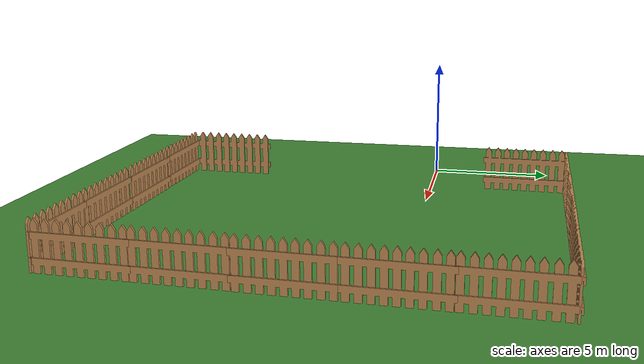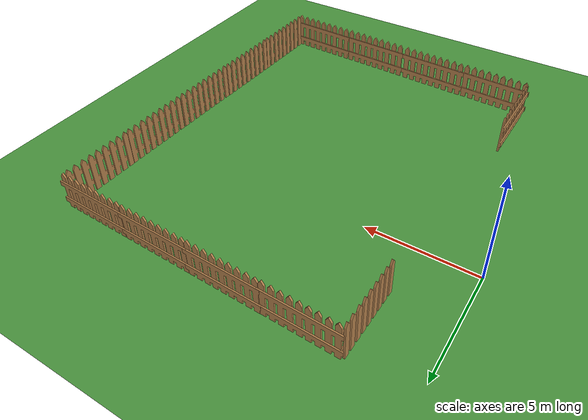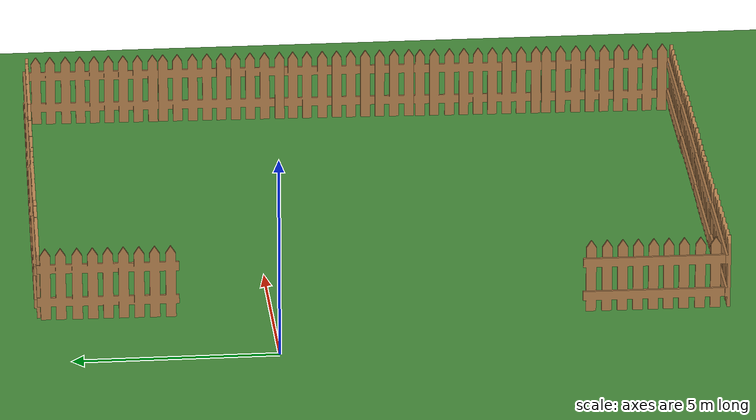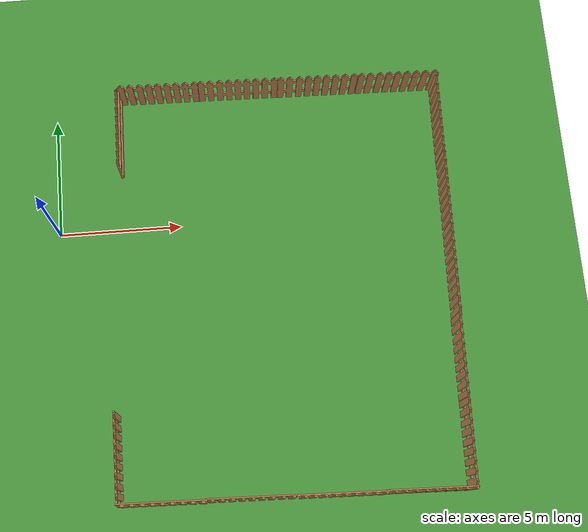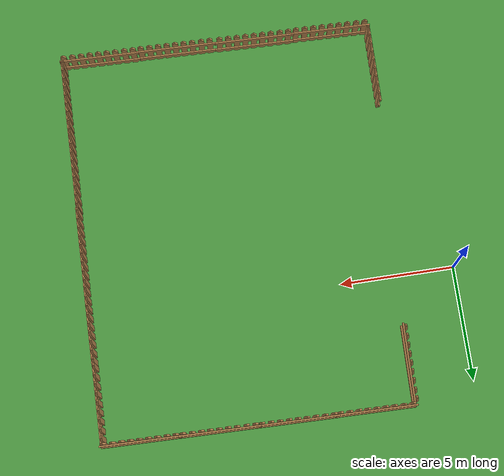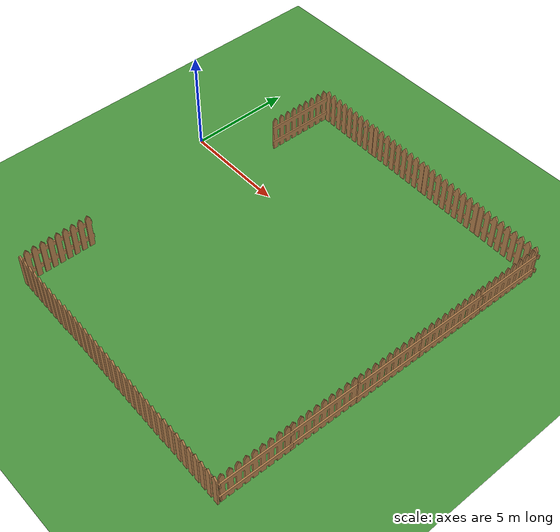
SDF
<sdf version="1.6">
 <world name="default">
  <light name="sun" type="directional">
   <pose>0 0 10 0 -0 0</pose>
   <diffuse>0.8 0.8 0.8 1</diffuse>
   <specular>0.2 0.2 0.2 1</specular>
   <attenuation>
    <range>1000</range>
    <constant>0.9</constant>
    <linear>0.01</linear>
    <quadratic>0.001</quadratic>
   </attenuation>
   <direction>-0.5 0.1 -0.9</direction>
  </light>
  <include><uri>model://ground_plane</uri></include>
  <model name="grass">
   <static>1</static>
   <link name="link">
    <collision name="collision">
     <geometry><plane><normal>0 0 1</normal><size>1 1</size></plane></geometry>
     <surface><friction><ode><mu>100</mu><mu2>50</mu2></ode></friction></surface>
    </collision>
    <visual name="visual">
     <cast_shadows>false</cast_shadows>
     <geometry><plane><normal>0 0 1</normal><size>100 100</size></plane></geometry>
     <material>
      <script><uri>model://asphalt_plane/materials/scripts</uri><name>Gazebo/Grass</name></script>
     </material>
    </visual>
   </link>
  </model>
  <physics name="default_physics" default="0" type="ode">
   <real_time_update_rate>1000</real_time_update_rate>
   <max_step_size>0.001</max_step_size>
   <real_time_factor>1</real_time_factor>
   <ode>
    <solver>
     <type>quick</type>
     <iters>150</iters>
     <precon_iters>0</precon_iters>
     <sor>1.4</sor>
     <use_dynamic_moi_rescaling>1</use_dynamic_moi_rescaling>
    </solver>
    <constraints>
     <cfm>1e-05</cfm>
     <erp>0.2</erp>
     <contact_max_correcting_vel>2000</contact_max_correcting_vel>
     <contact_surface_layer>0.01</contact_surface_layer>
    </constraints>
   </ode>
  </physics>
  <scene><ambient>0.4 0.4 0.4 1</ambient><background>0.7 0.7 0.7 1</background><shadows>1</shadows></scene>
  <gravity>0 0 -9.8</gravity>
  <magnetic_field>6e-06 2.3e-05 -4.2e-05</magnetic_field>
  <atmosphere type="adiabatic"/>
  <spherical_coordinates>
   <surface_model>EARTH_WGS84</surface_model>
   <latitude_deg>0</latitude_deg>
   <longitude_deg>0</longitude_deg>
   <elevation>0</elevation>
   <heading_deg>0</heading_deg>
  </spherical_coordinates>
  <model name="fence1">
   <link name="link">
    <inertial>
     <mass>1</mass>
     <inertia>
      <ixx>0.166667</ixx>
      <ixy>0</ixy>
      <ixz>0</ixz>
      <iyy>0.166667</iyy>
      <iyz>0</iyz>
      <izz>0.166667</izz>
     </inertia>
    </inertial>
    <visual name="visual">
     <geometry><mesh><uri>model://fence/meshes/fence.dae</uri><scale>0.3 0.3 0.3</scale></mesh></geometry>
     <material>
      <script><name>Gazebo/Wood</name><uri>file://media/materials/scripts/gazebo.material</uri></script>
      <shader type="pixel"><normal_map>__default__</normal_map></shader>
      <ambient>0.3 0.3 0.3 1</ambient>
      <diffuse>0.7 0.7 0.7 1</diffuse>
      <specular>0.01 0.01 0.01 1</specular>
      <emissive>0 0 0 1</emissive>
     </material>
     <pose>0 0 -0.5 0 -0 0</pose>
    </visual>
    <collision name="collision">
     <geometry><box><size>0.3 0.5 1</size></box></geometry>
     <surface>
      <friction>
       <ode><mu>1</mu><mu2>1</mu2><fdir1>0 0 0</fdir1><slip1>0</slip1><slip2>0</slip2></ode>
       <torsional>
        <coefficient>1</coefficient>
        <patch_radius>0</patch_radius>
        <surface_radius>0</surface_radius>
        <use_patch_radius>1</use_patch_radius>
        <ode><slip>0</slip></ode>
       </torsional>
      </friction>
      <bounce><restitution_coefficient>0</restitution_coefficient><threshold>1e+06</threshold></bounce>
      <contact>
       <collide_without_contact>0</collide_without_contact>
       <collide_without_contact_bitmask>1</collide_without_contact_bitmask>
       <collide_bitmask>1</collide_bitmask>
       <ode>
        <soft_cfm>0</soft_cfm>
        <soft_erp>0.2</soft_erp>
        <kp>1e+13</kp>
        <kd>1</kd>
        <max_vel>0.01</max_vel>
        <min_depth>0</min_depth>
       </ode>
       <bullet>
        <split_impulse>1</split_impulse>
        <split_impulse_penetration_threshold>-0.01</split_impulse_penetration_threshold>
        <soft_cfm>0</soft_cfm>
        <soft_erp>0.2</soft_erp>
        <kp>1e+13</kp>
        <kd>1</kd>
       </bullet>
      </contact>
     </surface>
    </collision>
   </link>
   <static>0</static>
   <pose>2.69665 3.98102 0.435776 0 0 -0.021223</pose>
  </model>
  <model name="fence2">
   <link name="link">
    <inertial>
     <mass>1</mass>
     <inertia>
      <ixx>0.166667</ixx>
      <ixy>0</ixy>
      <ixz>0</ixz>
      <iyy>0.166667</iyy>
      <iyz>0</iyz>
      <izz>0.166667</izz>
     </inertia>
    </inertial>
    <visual name="visual">
     <geometry><mesh><uri>model://fence/meshes/fence.dae</uri><scale>0.3 0.3 0.3</scale></mesh></geometry>
     <material>
      <script><name>Gazebo/Wood</name><uri>file://media/materials/scripts/gazebo.material</uri></script>
      <shader type="pixel"><normal_map>__default__</normal_map></shader>
      <ambient>0.3 0.3 0.3 1</ambient>
      <diffuse>0.7 0.7 0.7 1</diffuse>
      <specular>0.01 0.01 0.01 1</specular>
      <emissive>0 0 0 1</emissive>
     </material>
     <pose>0 0 -0.5 0 -0 0</pose>
    </visual>
    <collision name="collision">
     <geometry><box><size>0.3 0.5 1</size></box></geometry>
     <surface>
      <friction>
       <ode><mu>1</mu><mu2>1</mu2><fdir1>0 0 0</fdir1><slip1>0</slip1><slip2>0</slip2></ode>
       <torsional>
        <coefficient>1</coefficient>
        <patch_radius>0</patch_radius>
        <surface_radius>0</surface_radius>
        <use_patch_radius>1</use_patch_radius>
        <ode><slip>0</slip></ode>
       </torsional>
      </friction>
      <bounce><restitution_coefficient>0</restitution_coefficient><threshold>1e+06</threshold></bounce>
      <contact>
       <collide_without_contact>0</collide_without_contact>
       <collide_without_contact_bitmask>1</collide_without_contact_bitmask>
       <collide_bitmask>1</collide_bitmask>
       <ode>
        <soft_cfm>0</soft_cfm>
        <soft_erp>0.2</soft_erp>
        <kp>1e+13</kp>
        <kd>1</kd>
        <max_vel>0.01</max_vel>
        <min_depth>0</min_depth>
       </ode>
       <bullet>
        <split_impulse>1</split_impulse>
        <split_impulse_penetration_threshold>-0.01</split_impulse_penetration_threshold>
        <soft_cfm>0</soft_cfm>
        <soft_erp>0.2</soft_erp>
        <kp>1e+13</kp>
        <kd>1</kd>
       </bullet>
      </contact>
     </surface>
    </collision>
   </link>
   <static>0</static>
   <pose>4.45364 5.64125 0.435776 0 -0 1.54699</pose>
  </model>
  <model name="fence3">
   <link name="link">
    <inertial>
     <mass>1</mass>
     <inertia>
      <ixx>0.166667</ixx>
      <ixy>0</ixy>
      <ixz>0</ixz>
      <iyy>0.166667</iyy>
      <iyz>0</iyz>
      <izz>0.166667</izz>
     </inertia>
    </inertial>
    <visual name="visual">
     <geometry><mesh><uri>model://fence/meshes/fence.dae</uri><scale>0.3 0.3 0.3</scale></mesh></geometry>
     <material>
      <script><name>Gazebo/Wood</name><uri>file://media/materials/scripts/gazebo.material</uri></script>
      <shader type="pixel"><normal_map>__default__</normal_map></shader>
      <ambient>0.3 0.3 0.3 1</ambient>
      <diffuse>0.7 0.7 0.7 1</diffuse>
      <specular>0.01 0.01 0.01 1</specular>
      <emissive>0 0 0 1</emissive>
     </material>
     <pose>0 0 -0.5 0 -0 0</pose>
    </visual>
    <collision name="collision">
     <geometry><box><size>0.3 0.5 1</size></box></geometry>
     <surface>
      <friction>
       <ode><mu>1</mu><mu2>1</mu2><fdir1>0 0 0</fdir1><slip1>0</slip1><slip2>0</slip2></ode>
       <torsional>
        <coefficient>1</coefficient>
        <patch_radius>0</patch_radius>
        <surface_radius>0</surface_radius>
        <use_patch_radius>1</use_patch_radius>
        <ode><slip>0</slip></ode>
       </torsional>
      </friction>
      <bounce><restitution_coefficient>0</restitution_coefficient><threshold>1e+06</threshold></bounce>
      <contact>
       <collide_without_contact>0</collide_without_contact>
       <collide_without_contact_bitmask>1</collide_without_contact_bitmask>
       <collide_bitmask>1</collide_bitmask>
       <ode>
        <soft_cfm>0</soft_cfm>
        <soft_erp>0.2</soft_erp>
        <kp>1e+13</kp>
        <kd>1</kd>
        <max_vel>0.01</max_vel>
        <min_depth>0</min_depth>
       </ode>
       <bullet>
        <split_impulse>1</split_impulse>
        <split_impulse_penetration_threshold>-0.01</split_impulse_penetration_threshold>
        <soft_cfm>0</soft_cfm>
        <soft_erp>0.2</soft_erp>
        <kp>1e+13</kp>
        <kd>1</kd>
       </bullet>
      </contact>
     </surface>
    </collision>
   </link>
   <static>0</static>
   <pose>7.78131 5.57029 0.435776 0 -0 1.54699</pose>
  </model>
  <model name="fence4">
   <link name="link">
    <inertial>
     <mass>1</mass>
     <inertia>
      <ixx>0.166667</ixx>
      <ixy>0</ixy>
      <ixz>0</ixz>
      <iyy>0.166667</iyy>
      <iyz>0</iyz>
      <izz>0.166667</izz>
     </inertia>
    </inertial>
    <visual name="visual">
     <geometry><mesh><uri>model://fence/meshes/fence.dae</uri><scale>0.3 0.3 0.3</scale></mesh></geometry>
     <material>
      <script><name>Gazebo/Wood</name><uri>file://media/materials/scripts/gazebo.material</uri></script>
      <shader type="pixel"><normal_map>__default__</normal_map></shader>
      <ambient>0.3 0.3 0.3 1</ambient>
      <diffuse>0.7 0.7 0.7 1</diffuse>
      <specular>0.01 0.01 0.01 1</specular>
      <emissive>0 0 0 1</emissive>
     </material>
     <pose>0 0 -0.5 0 -0 0</pose>
    </visual>
    <collision name="collision">
     <geometry><box><size>0.3 0.5 1</size></box></geometry>
     <surface>
      <friction>
       <ode><mu>1</mu><mu2>1</mu2><fdir1>0 0 0</fdir1><slip1>0</slip1><slip2>0</slip2></ode>
       <torsional>
        <coefficient>1</coefficient>
        <patch_radius>0</patch_radius>
        <surface_radius>0</surface_radius>
        <use_patch_radius>1</use_patch_radius>
        <ode><slip>0</slip></ode>
       </torsional>
      </friction>
      <bounce><restitution_coefficient>0</restitution_coefficient><threshold>1e+06</threshold></bounce>
      <contact>
       <collide_without_contact>0</collide_without_contact>
       <collide_without_contact_bitmask>1</collide_without_contact_bitmask>
       <collide_bitmask>1</collide_bitmask>
       <ode>
        <soft_cfm>0</soft_cfm>
        <soft_erp>0.2</soft_erp>
        <kp>1e+13</kp>
        <kd>1</kd>
        <max_vel>0.01</max_vel>
        <min_depth>0</min_depth>
       </ode>
       <bullet>
        <split_impulse>1</split_impulse>
        <split_impulse_penetration_threshold>-0.01</split_impulse_penetration_threshold>
        <soft_cfm>0</soft_cfm>
        <soft_erp>0.2</soft_erp>
        <kp>1e+13</kp>
        <kd>1</kd>
       </bullet>
      </contact>
     </surface>
    </collision>
   </link>
   <static>0</static>
   <pose>11.1102 5.48852 0.435776 0 -0 1.54699</pose>
  </model>
  <model name="fence5">
   <link name="link">
    <inertial>
     <mass>1</mass>
     <inertia>
      <ixx>0.166667</ixx>
      <ixy>0</ixy>
      <ixz>0</ixz>
      <iyy>0.166667</iyy>
      <iyz>0</iyz>
      <izz>0.166667</izz>
     </inertia>
    </inertial>
    <visual name="visual">
     <geometry><mesh><uri>model://fence/meshes/fence.dae</uri><scale>0.3 0.3 0.3</scale></mesh></geometry>
     <material>
      <script><name>Gazebo/Wood</name><uri>file://media/materials/scripts/gazebo.material</uri></script>
      <shader type="pixel"><normal_map>__default__</normal_map></shader>
      <ambient>0.3 0.3 0.3 1</ambient>
      <diffuse>0.7 0.7 0.7 1</diffuse>
      <specular>0.01 0.01 0.01 1</specular>
      <emissive>0 0 0 1</emissive>
     </material>
     <pose>0 0 -0.5 0 -0 0</pose>
    </visual>
    <collision name="collision">
     <geometry><box><size>0.3 0.5 1</size></box></geometry>
     <surface>
      <friction>
       <ode><mu>1</mu><mu2>1</mu2><fdir1>0 0 0</fdir1><slip1>0</slip1><slip2>0</slip2></ode>
       <torsional>
        <coefficient>1</coefficient>
        <patch_radius>0</patch_radius>
        <surface_radius>0</surface_radius>
        <use_patch_radius>1</use_patch_radius>
        <ode><slip>0</slip></ode>
       </torsional>
      </friction>
      <bounce><restitution_coefficient>0</restitution_coefficient><threshold>1e+06</threshold></bounce>
      <contact>
       <collide_without_contact>0</collide_without_contact>
       <collide_without_contact_bitmask>1</collide_without_contact_bitmask>
       <collide_bitmask>1</collide_bitmask>
       <ode>
        <soft_cfm>0</soft_cfm>
        <soft_erp>0.2</soft_erp>
        <kp>1e+13</kp>
        <kd>1</kd>
        <max_vel>0.01</max_vel>
        <min_depth>0</min_depth>
       </ode>
       <bullet>
        <split_impulse>1</split_impulse>
        <split_impulse_penetration_threshold>-0.01</split_impulse_penetration_threshold>
        <soft_cfm>0</soft_cfm>
        <soft_erp>0.2</soft_erp>
        <kp>1e+13</kp>
        <kd>1</kd>
       </bullet>
      </contact>
     </surface>
    </collision>
   </link>
   <static>0</static>
   <pose>14.4678 5.40478 0.435776 0 -0 1.54699</pose>
  </model>
  <model name="fence6">
   <link name="link">
    <inertial>
     <mass>1</mass>
     <inertia>
      <ixx>0.166667</ixx>
      <ixy>0</ixy>
      <ixz>0</ixz>
      <iyy>0.166667</iyy>
      <iyz>0</iyz>
      <izz>0.166667</izz>
     </inertia>
    </inertial>
    <visual name="visual">
     <geometry><mesh><uri>model://fence/meshes/fence.dae</uri><scale>0.3 0.3 0.3</scale></mesh></geometry>
     <material>
      <script><name>Gazebo/Wood</name><uri>file://media/materials/scripts/gazebo.material</uri></script>
      <shader type="pixel"><normal_map>__default__</normal_map></shader>
      <ambient>0.3 0.3 0.3 1</ambient>
      <diffuse>0.7 0.7 0.7 1</diffuse>
      <specular>0.01 0.01 0.01 1</specular>
      <emissive>0 0 0 1</emissive>
     </material>
     <pose>0 0 -0.5 0 -0 0</pose>
    </visual>
    <collision name="collision">
     <geometry><box><size>0.3 0.5 1</size></box></geometry>
     <surface>
      <friction>
       <ode><mu>1</mu><mu2>1</mu2><fdir1>0 0 0</fdir1><slip1>0</slip1><slip2>0</slip2></ode>
       <torsional>
        <coefficient>1</coefficient>
        <patch_radius>0</patch_radius>
        <surface_radius>0</surface_radius>
        <use_patch_radius>1</use_patch_radius>
        <ode><slip>0</slip></ode>
       </torsional>
      </friction>
      <bounce><restitution_coefficient>0</restitution_coefficient><threshold>1e+06</threshold></bounce>
      <contact>
       <collide_without_contact>0</collide_without_contact>
       <collide_without_contact_bitmask>1</collide_without_contact_bitmask>
       <collide_bitmask>1</collide_bitmask>
       <ode>
        <soft_cfm>0</soft_cfm>
        <soft_erp>0.2</soft_erp>
        <kp>1e+13</kp>
        <kd>1</kd>
        <max_vel>0.01</max_vel>
        <min_depth>0</min_depth>
       </ode>
       <bullet>
        <split_impulse>1</split_impulse>
        <split_impulse_penetration_threshold>-0.01</split_impulse_penetration_threshold>
        <soft_cfm>0</soft_cfm>
        <soft_erp>0.2</soft_erp>
        <kp>1e+13</kp>
        <kd>1</kd>
       </bullet>
      </contact>
     </surface>
    </collision>
   </link>
   <static>0</static>
   <pose>15.9861 3.60485 0.435776 0 0 -0.026799</pose>
  </model>
  <model name="fence7">
   <link name="link">
    <inertial>
     <mass>1</mass>
     <inertia>
      <ixx>0.166667</ixx>
      <ixy>0</ixy>
      <ixz>0</ixz>
      <iyy>0.166667</iyy>
      <iyz>0</iyz>
      <izz>0.166667</izz>
     </inertia>
    </inertial>
    <visual name="visual">
     <geometry><mesh><uri>model://fence/meshes/fence.dae</uri><scale>0.3 0.3 0.3</scale></mesh></geometry>
     <material>
      <script><name>Gazebo/Wood</name><uri>file://media/materials/scripts/gazebo.material</uri></script>
      <shader type="pixel"><normal_map>__default__</normal_map></shader>
      <ambient>0.3 0.3 0.3 1</ambient>
      <diffuse>0.7 0.7 0.7 1</diffuse>
      <specular>0.01 0.01 0.01 1</specular>
      <emissive>0 0 0 1</emissive>
     </material>
     <pose>0 0 -0.5 0 -0 0</pose>
    </visual>
    <collision name="collision">
     <geometry><box><size>0.3 0.5 1</size></box></geometry>
     <surface>
      <friction>
       <ode><mu>1</mu><mu2>1</mu2><fdir1>0 0 0</fdir1><slip1>0</slip1><slip2>0</slip2></ode>
       <torsional>
        <coefficient>1</coefficient>
        <patch_radius>0</patch_radius>
        <surface_radius>0</surface_radius>
        <use_patch_radius>1</use_patch_radius>
        <ode><slip>0</slip></ode>
       </torsional>
      </friction>
      <bounce><restitution_coefficient>0</restitution_coefficient><threshold>1e+06</threshold></bounce>
      <contact>
       <collide_without_contact>0</collide_without_contact>
       <collide_without_contact_bitmask>1</collide_without_contact_bitmask>
       <collide_bitmask>1</collide_bitmask>
       <ode>
        <soft_cfm>0</soft_cfm>
        <soft_erp>0.2</soft_erp>
        <kp>1e+13</kp>
        <kd>1</kd>
        <max_vel>0.01</max_vel>
        <min_depth>0</min_depth>
       </ode>
       <bullet>
        <split_impulse>1</split_impulse>
        <split_impulse_penetration_threshold>-0.01</split_impulse_penetration_threshold>
        <soft_cfm>0</soft_cfm>
        <soft_erp>0.2</soft_erp>
        <kp>1e+13</kp>
        <kd>1</kd>
       </bullet>
      </contact>
     </surface>
    </collision>
   </link>
   <static>0</static>
   <pose>15.9058 0.273293 0.435776 0 0 -0.026799</pose>
  </model>
  <model name="fence8">
   <link name="link">
    <inertial>
     <mass>1</mass>
     <inertia>
      <ixx>0.166667</ixx>
      <ixy>0</ixy>
      <ixz>0</ixz>
      <iyy>0.166667</iyy>
      <iyz>0</iyz>
      <izz>0.166667</izz>
     </inertia>
    </inertial>
    <visual name="visual">
     <geometry><mesh><uri>model://fence/meshes/fence.dae</uri><scale>0.3 0.3 0.3</scale></mesh></geometry>
     <material>
      <script><name>Gazebo/Wood</name><uri>file://media/materials/scripts/gazebo.material</uri></script>
      <shader type="pixel"><normal_map>__default__</normal_map></shader>
      <ambient>0.3 0.3 0.3 1</ambient>
      <diffuse>0.7 0.7 0.7 1</diffuse>
      <specular>0.01 0.01 0.01 1</specular>
      <emissive>0 0 0 1</emissive>
     </material>
     <pose>0 0 -0.5 0 -0 0</pose>
    </visual>
    <collision name="collision">
     <geometry><box><size>0.3 0.5 1</size></box></geometry>
     <surface>
      <friction>
       <ode><mu>1</mu><mu2>1</mu2><fdir1>0 0 0</fdir1><slip1>0</slip1><slip2>0</slip2></ode>
       <torsional>
        <coefficient>1</coefficient>
        <patch_radius>0</patch_radius>
        <surface_radius>0</surface_radius>
        <use_patch_radius>1</use_patch_radius>
        <ode><slip>0</slip></ode>
       </torsional>
      </friction>
      <bounce><restitution_coefficient>0</restitution_coefficient><threshold>1e+06</threshold></bounce>
      <contact>
       <collide_without_contact>0</collide_without_contact>
       <collide_without_contact_bitmask>1</collide_without_contact_bitmask>
       <collide_bitmask>1</collide_bitmask>
       <ode>
        <soft_cfm>0</soft_cfm>
        <soft_erp>0.2</soft_erp>
        <kp>1e+13</kp>
        <kd>1</kd>
        <max_vel>0.01</max_vel>
        <min_depth>0</min_depth>
       </ode>
       <bullet>
        <split_impulse>1</split_impulse>
        <split_impulse_penetration_threshold>-0.01</split_impulse_penetration_threshold>
        <soft_cfm>0</soft_cfm>
        <soft_erp>0.2</soft_erp>
        <kp>1e+13</kp>
        <kd>1</kd>
       </bullet>
      </contact>
     </surface>
    </collision>
   </link>
   <static>0</static>
   <pose>15.8095 -3.13363 0.435776 0 0 -0.026799</pose>
  </model>
  <model name="fence9">
   <link name="link">
    <inertial>
     <mass>1</mass>
     <inertia>
      <ixx>0.166667</ixx>
      <ixy>0</ixy>
      <ixz>0</ixz>
      <iyy>0.166667</iyy>
      <iyz>0</iyz>
      <izz>0.166667</izz>
     </inertia>
    </inertial>
    <visual name="visual">
     <geometry><mesh><uri>model://fence/meshes/fence.dae</uri><scale>0.3 0.3 0.3</scale></mesh></geometry>
     <material>
      <script><name>Gazebo/Wood</name><uri>file://media/materials/scripts/gazebo.material</uri></script>
      <shader type="pixel"><normal_map>__default__</normal_map></shader>
      <ambient>0.3 0.3 0.3 1</ambient>
      <diffuse>0.7 0.7 0.7 1</diffuse>
      <specular>0.01 0.01 0.01 1</specular>
      <emissive>0 0 0 1</emissive>
     </material>
     <pose>0 0 -0.5 0 -0 0</pose>
    </visual>
    <collision name="collision">
     <geometry><box><size>0.3 0.5 1</size></box></geometry>
     <surface>
      <friction>
       <ode><mu>1</mu><mu2>1</mu2><fdir1>0 0 0</fdir1><slip1>0</slip1><slip2>0</slip2></ode>
       <torsional>
        <coefficient>1</coefficient>
        <patch_radius>0</patch_radius>
        <surface_radius>0</surface_radius>
        <use_patch_radius>1</use_patch_radius>
        <ode><slip>0</slip></ode>
       </torsional>
      </friction>
      <bounce><restitution_coefficient>0</restitution_coefficient><threshold>1e+06</threshold></bounce>
      <contact>
       <collide_without_contact>0</collide_without_contact>
       <collide_without_contact_bitmask>1</collide_without_contact_bitmask>
       <collide_bitmask>1</collide_bitmask>
       <ode>
        <soft_cfm>0</soft_cfm>
        <soft_erp>0.2</soft_erp>
        <kp>1e+13</kp>
        <kd>1</kd>
        <max_vel>0.01</max_vel>
        <min_depth>0</min_depth>
       </ode>
       <bullet>
        <split_impulse>1</split_impulse>
        <split_impulse_penetration_threshold>-0.01</split_impulse_penetration_threshold>
        <soft_cfm>0</soft_cfm>
        <soft_erp>0.2</soft_erp>
        <kp>1e+13</kp>
        <kd>1</kd>
       </bullet>
      </contact>
     </surface>
    </collision>
   </link>
   <static>0</static>
   <pose>15.6981 -6.4824 0.435776 0 0 -0.026799</pose>
  </model>
  <model name="fence10">
   <link name="link">
    <inertial>
     <mass>1</mass>
     <inertia>
      <ixx>0.166667</ixx>
      <ixy>0</ixy>
      <ixz>0</ixz>
      <iyy>0.166667</iyy>
      <iyz>0</iyz>
      <izz>0.166667</izz>
     </inertia>
    </inertial>
    <visual name="visual">
     <geometry><mesh><uri>model://fence/meshes/fence.dae</uri><scale>0.3 0.3 0.3</scale></mesh></geometry>
     <material>
      <script><name>Gazebo/Wood</name><uri>file://media/materials/scripts/gazebo.material</uri></script>
      <shader type="pixel"><normal_map>__default__</normal_map></shader>
      <ambient>0.3 0.3 0.3 1</ambient>
      <diffuse>0.7 0.7 0.7 1</diffuse>
      <specular>0.01 0.01 0.01 1</specular>
      <emissive>0 0 0 1</emissive>
     </material>
     <pose>0 0 -0.5 0 -0 0</pose>
    </visual>
    <collision name="collision">
     <geometry><box><size>0.3 0.5 1</size></box></geometry>
     <surface>
      <friction>
       <ode><mu>1</mu><mu2>1</mu2><fdir1>0 0 0</fdir1><slip1>0</slip1><slip2>0</slip2></ode>
       <torsional>
        <coefficient>1</coefficient>
        <patch_radius>0</patch_radius>
        <surface_radius>0</surface_radius>
        <use_patch_radius>1</use_patch_radius>
        <ode><slip>0</slip></ode>
       </torsional>
      </friction>
      <bounce><restitution_coefficient>0</restitution_coefficient><threshold>1e+06</threshold></bounce>
      <contact>
       <collide_without_contact>0</collide_without_contact>
       <collide_without_contact_bitmask>1</collide_without_contact_bitmask>
       <collide_bitmask>1</collide_bitmask>
       <ode>
        <soft_cfm>0</soft_cfm>
        <soft_erp>0.2</soft_erp>
        <kp>1e+13</kp>
        <kd>1</kd>
        <max_vel>0.01</max_vel>
        <min_depth>0</min_depth>
       </ode>
       <bullet>
        <split_impulse>1</split_impulse>
        <split_impulse_penetration_threshold>-0.01</split_impulse_penetration_threshold>
        <soft_cfm>0</soft_cfm>
        <soft_erp>0.2</soft_erp>
        <kp>1e+13</kp>
        <kd>1</kd>
       </bullet>
      </contact>
     </surface>
    </collision>
   </link>
   <static>0</static>
   <pose>15.6105 -9.81638 0.435776 0 0 -0.026799</pose>
  </model>
  <model name="fence11">
   <link name="link">
    <inertial>
     <mass>1</mass>
     <inertia>
      <ixx>0.166667</ixx>
      <ixy>0</ixy>
      <ixz>0</ixz>
      <iyy>0.166667</iyy>
      <iyz>0</iyz>
      <izz>0.166667</izz>
     </inertia>
    </inertial>
    <visual name="visual">
     <geometry><mesh><uri>model://fence/meshes/fence.dae</uri><scale>0.3 0.3 0.3</scale></mesh></geometry>
     <material>
      <script><name>Gazebo/Wood</name><uri>file://media/materials/scripts/gazebo.material</uri></script>
      <shader type="pixel"><normal_map>__default__</normal_map></shader>
      <ambient>0.3 0.3 0.3 1</ambient>
      <diffuse>0.7 0.7 0.7 1</diffuse>
      <specular>0.01 0.01 0.01 1</specular>
      <emissive>0 0 0 1</emissive>
     </material>
     <pose>0 0 -0.5 0 -0 0</pose>
    </visual>
    <collision name="collision">
     <geometry><box><size>0.3 0.5 1</size></box></geometry>
     <surface>
      <friction>
       <ode><mu>1</mu><mu2>1</mu2><fdir1>0 0 0</fdir1><slip1>0</slip1><slip2>0</slip2></ode>
       <torsional>
        <coefficient>1</coefficient>
        <patch_radius>0</patch_radius>
        <surface_radius>0</surface_radius>
        <use_patch_radius>1</use_patch_radius>
        <ode><slip>0</slip></ode>
       </torsional>
      </friction>
      <bounce><restitution_coefficient>0</restitution_coefficient><threshold>1e+06</threshold></bounce>
      <contact>
       <collide_without_contact>0</collide_without_contact>
       <collide_without_contact_bitmask>1</collide_without_contact_bitmask>
       <collide_bitmask>1</collide_bitmask>
       <ode>
        <soft_cfm>0</soft_cfm>
        <soft_erp>0.2</soft_erp>
        <kp>1e+13</kp>
        <kd>1</kd>
        <max_vel>0.01</max_vel>
        <min_depth>0</min_depth>
       </ode>
       <bullet>
        <split_impulse>1</split_impulse>
        <split_impulse_penetration_threshold>-0.01</split_impulse_penetration_threshold>
        <soft_cfm>0</soft_cfm>
        <soft_erp>0.2</soft_erp>
        <kp>1e+13</kp>
        <kd>1</kd>
       </bullet>
      </contact>
     </surface>
    </collision>
   </link>
   <static>0</static>
   <pose>13.9686 -11.5328 0.435776 0 -0 1.54033</pose>
  </model>
  <model name="fence12">
   <link name="link">
    <inertial>
     <mass>1</mass>
     <inertia>
      <ixx>0.166667</ixx>
      <ixy>0</ixy>
      <ixz>0</ixz>
      <iyy>0.166667</iyy>
      <iyz>0</iyz>
      <izz>0.166667</izz>
     </inertia>
    </inertial>
    <visual name="visual">
     <geometry><mesh><uri>model://fence/meshes/fence.dae</uri><scale>0.3 0.3 0.3</scale></mesh></geometry>
     <material>
      <script><name>Gazebo/Wood</name><uri>file://media/materials/scripts/gazebo.material</uri></script>
      <shader type="pixel"><normal_map>__default__</normal_map></shader>
      <ambient>0.3 0.3 0.3 1</ambient>
      <diffuse>0.7 0.7 0.7 1</diffuse>
      <specular>0.01 0.01 0.01 1</specular>
      <emissive>0 0 0 1</emissive>
     </material>
     <pose>0 0 -0.5 0 -0 0</pose>
    </visual>
    <collision name="collision">
     <geometry><box><size>0.3 0.5 1</size></box></geometry>
     <surface>
      <friction>
       <ode><mu>1</mu><mu2>1</mu2><fdir1>0 0 0</fdir1><slip1>0</slip1><slip2>0</slip2></ode>
       <torsional>
        <coefficient>1</coefficient>
        <patch_radius>0</patch_radius>
        <surface_radius>0</surface_radius>
        <use_patch_radius>1</use_patch_radius>
        <ode><slip>0</slip></ode>
       </torsional>
      </friction>
      <bounce><restitution_coefficient>0</restitution_coefficient><threshold>1e+06</threshold></bounce>
      <contact>
       <collide_without_contact>0</collide_without_contact>
       <collide_without_contact_bitmask>1</collide_without_contact_bitmask>
       <collide_bitmask>1</collide_bitmask>
       <ode>
        <soft_cfm>0</soft_cfm>
        <soft_erp>0.2</soft_erp>
        <kp>1e+13</kp>
        <kd>1</kd>
        <max_vel>0.01</max_vel>
        <min_depth>0</min_depth>
       </ode>
       <bullet>
        <split_impulse>1</split_impulse>
        <split_impulse_penetration_threshold>-0.01</split_impulse_penetration_threshold>
        <soft_cfm>0</soft_cfm>
        <soft_erp>0.2</soft_erp>
        <kp>1e+13</kp>
        <kd>1</kd>
       </bullet>
      </contact>
     </surface>
    </collision>
   </link>
   <static>0</static>
   <pose>10.5625 -11.4457 0.435776 0 -0 1.54033</pose>
  </model>
  <model name="fence13">
   <link name="link">
    <inertial>
     <mass>1</mass>
     <inertia>
      <ixx>0.166667</ixx>
      <ixy>0</ixy>
      <ixz>0</ixz>
      <iyy>0.166667</iyy>
      <iyz>0</iyz>
      <izz>0.166667</izz>
     </inertia>
    </inertial>
    <visual name="visual">
     <geometry><mesh><uri>model://fence/meshes/fence.dae</uri><scale>0.3 0.3 0.3</scale></mesh></geometry>
     <material>
      <script><name>Gazebo/Wood</name><uri>file://media/materials/scripts/gazebo.material</uri></script>
      <shader type="pixel"><normal_map>__default__</normal_map></shader>
      <ambient>0.3 0.3 0.3 1</ambient>
      <diffuse>0.7 0.7 0.7 1</diffuse>
      <specular>0.01 0.01 0.01 1</specular>
      <emissive>0 0 0 1</emissive>
     </material>
     <pose>0 0 -0.5 0 -0 0</pose>
    </visual>
    <collision name="collision">
     <geometry><box><size>0.3 0.5 1</size></box></geometry>
     <surface>
      <friction>
       <ode><mu>1</mu><mu2>1</mu2><fdir1>0 0 0</fdir1><slip1>0</slip1><slip2>0</slip2></ode>
       <torsional>
        <coefficient>1</coefficient>
        <patch_radius>0</patch_radius>
        <surface_radius>0</surface_radius>
        <use_patch_radius>1</use_patch_radius>
        <ode><slip>0</slip></ode>
       </torsional>
      </friction>
      <bounce><restitution_coefficient>0</restitution_coefficient><threshold>1e+06</threshold></bounce>
      <contact>
       <collide_without_contact>0</collide_without_contact>
       <collide_without_contact_bitmask>1</collide_without_contact_bitmask>
       <collide_bitmask>1</collide_bitmask>
       <ode>
        <soft_cfm>0</soft_cfm>
        <soft_erp>0.2</soft_erp>
        <kp>1e+13</kp>
        <kd>1</kd>
        <max_vel>0.01</max_vel>
        <min_depth>0</min_depth>
       </ode>
       <bullet>
        <split_impulse>1</split_impulse>
        <split_impulse_penetration_threshold>-0.01</split_impulse_penetration_threshold>
        <soft_cfm>0</soft_cfm>
        <soft_erp>0.2</soft_erp>
        <kp>1e+13</kp>
        <kd>1</kd>
       </bullet>
      </contact>
     </surface>
    </collision>
   </link>
   <static>0</static>
   <pose>7.07073 -11.3272 0.435776 0 -0 1.54033</pose>
  </model>
  <model name="fence14">
   <link name="link">
    <inertial>
     <mass>1</mass>
     <inertia>
      <ixx>0.166667</ixx>
      <ixy>0</ixy>
      <ixz>0</ixz>
      <iyy>0.166667</iyy>
      <iyz>0</iyz>
      <izz>0.166667</izz>
     </inertia>
    </inertial>
    <visual name="visual">
     <geometry><mesh><uri>model://fence/meshes/fence.dae</uri><scale>0.3 0.3 0.3</scale></mesh></geometry>
     <material>
      <script><name>Gazebo/Wood</name><uri>file://media/materials/scripts/gazebo.material</uri></script>
      <shader type="pixel"><normal_map>__default__</normal_map></shader>
      <ambient>0.3 0.3 0.3 1</ambient>
      <diffuse>0.7 0.7 0.7 1</diffuse>
      <specular>0.01 0.01 0.01 1</specular>
      <emissive>0 0 0 1</emissive>
     </material>
     <pose>0 0 -0.5 0 -0 0</pose>
    </visual>
    <collision name="collision">
     <geometry><box><size>0.3 0.5 1</size></box></geometry>
     <surface>
      <friction>
       <ode><mu>1</mu><mu2>1</mu2><fdir1>0 0 0</fdir1><slip1>0</slip1><slip2>0</slip2></ode>
       <torsional>
        <coefficient>1</coefficient>
        <patch_radius>0</patch_radius>
        <surface_radius>0</surface_radius>
        <use_patch_radius>1</use_patch_radius>
        <ode><slip>0</slip></ode>
       </torsional>
      </friction>
      <bounce><restitution_coefficient>0</restitution_coefficient><threshold>1e+06</threshold></bounce>
      <contact>
       <collide_without_contact>0</collide_without_contact>
       <collide_without_contact_bitmask>1</collide_without_contact_bitmask>
       <collide_bitmask>1</collide_bitmask>
       <ode>
        <soft_cfm>0</soft_cfm>
        <soft_erp>0.2</soft_erp>
        <kp>1e+13</kp>
        <kd>1</kd>
        <max_vel>0.01</max_vel>
        <min_depth>0</min_depth>
       </ode>
       <bullet>
        <split_impulse>1</split_impulse>
        <split_impulse_penetration_threshold>-0.01</split_impulse_penetration_threshold>
        <soft_cfm>0</soft_cfm>
        <soft_erp>0.2</soft_erp>
        <kp>1e+13</kp>
        <kd>1</kd>
       </bullet>
      </contact>
     </surface>
    </collision>
   </link>
   <static>0</static>
   <pose>3.66314 -11.2479 0.435776 0 -0 1.54033</pose>
  </model>
  <model name="fence15">
   <link name="link">
    <inertial>
     <mass>1</mass>
     <inertia>
      <ixx>0.166667</ixx>
      <ixy>0</ixy>
      <ixz>0</ixz>
      <iyy>0.166667</iyy>
      <iyz>0</iyz>
      <izz>0.166667</izz>
     </inertia>
    </inertial>
    <visual name="visual">
     <geometry><mesh><uri>model://fence/meshes/fence.dae</uri><scale>0.3 0.3 0.3</scale></mesh></geometry>
     <material>
      <script><name>Gazebo/Wood</name><uri>file://media/materials/scripts/gazebo.material</uri></script>
      <shader type="pixel"><normal_map>__default__</normal_map></shader>
      <ambient>0.3 0.3 0.3 1</ambient>
      <diffuse>0.7 0.7 0.7 1</diffuse>
      <specular>0.01 0.01 0.01 1</specular>
      <emissive>0 0 0 1</emissive>
     </material>
     <pose>0 0 -0.5 0 -0 0</pose>
    </visual>
    <collision name="collision">
     <geometry><box><size>0.3 0.5 1</size></box></geometry>
     <surface>
      <friction>
       <ode><mu>1</mu><mu2>1</mu2><fdir1>0 0 0</fdir1><slip1>0</slip1><slip2>0</slip2></ode>
       <torsional>
        <coefficient>1</coefficient>
        <patch_radius>0</patch_radius>
        <surface_radius>0</surface_radius>
        <use_patch_radius>1</use_patch_radius>
        <ode><slip>0</slip></ode>
       </torsional>
      </friction>
      <bounce><restitution_coefficient>0</restitution_coefficient><threshold>1e+06</threshold></bounce>
      <contact>
       <collide_without_contact>0</collide_without_contact>
       <collide_without_contact_bitmask>1</collide_without_contact_bitmask>
       <collide_bitmask>1</collide_bitmask>
       <ode>
        <soft_cfm>0</soft_cfm>
        <soft_erp>0.2</soft_erp>
        <kp>1e+13</kp>
        <kd>1</kd>
        <max_vel>0.01</max_vel>
        <min_depth>0</min_depth>
       </ode>
       <bullet>
        <split_impulse>1</split_impulse>
        <split_impulse_penetration_threshold>-0.01</split_impulse_penetration_threshold>
        <soft_cfm>0</soft_cfm>
        <soft_erp>0.2</soft_erp>
        <kp>1e+13</kp>
        <kd>1</kd>
       </bullet>
      </contact>
     </surface>
    </collision>
   </link>
   <static>0</static>
   <pose>2.05618 -9.33443 0.435776 0 -0 3.12819</pose>
  </model>
  <model name="uwb1">
   <link name="link">
    <gravity>0</gravity>
    <visual name="visual">
     <geometry><box><size>0.04 0.01 0.06</size></box></geometry>
     <material>
      <script><name>Gazebo/White</name><uri>file://media/materials/scripts/gazebo.material</uri></script>
     </material>
    </visual>
    <collision name="collision"><geometry><box><size>0.04 0.01 0.06</size></box></geometry></collision>
   </link>
   <pose>15.19 -11.46 1.4 0 0 0</pose>
  </model>
  <model name="uwb2">
   <link name="link">
    <gravity>0</gravity>
    <visual name="visual">
     <geometry><box><size>0.04 0.01 0.06</size></box></geometry>
     <material>
      <script><name>Gazebo/White</name><uri>file://media/materials/scripts/gazebo.material</uri></script>
     </material>
    </visual>
    <collision name="collision"><geometry><box><size>0.04 0.01 0.06</size></box></geometry></collision>
   </link>
   <pose>15.19 5.33 1.4 0 0 0</pose>
  </model>
  <model name="uwb3">
   <link name="link">
    <gravity>0</gravity>
    <visual name="visual">
     <geometry><box><size>0.04 0.01 0.06</size></box></geometry>
     <material>
      <script><name>Gazebo/White</name><uri>file://media/materials/scripts/gazebo.material</uri></script>
     </material>
    </visual>
    <collision name="collision"><geometry><box><size>0.04 0.01 0.06</size></box></geometry></collision>
   </link>
   <pose>5.56 5.56 1.4 0 0 0</pose>
  </model>
  <model name="uwb4">
   <link name="link">
    <gravity>0</gravity>
    <visual name="visual">
     <geometry><box><size>0.04 0.01 0.06</size></box></geometry>
     <material>
      <script><name>Gazebo/White</name><uri>file://media/materials/scripts/gazebo.material</uri></script>
     </material>
    </visual>
    <collision name="collision"><geometry><box><size>0.04 0.01 0.06</size></box></geometry></collision>
   </link>
   <pose>5.56 -11.17 1.4 0 0 0</pose>
  </model>
 </world>
</sdf>
